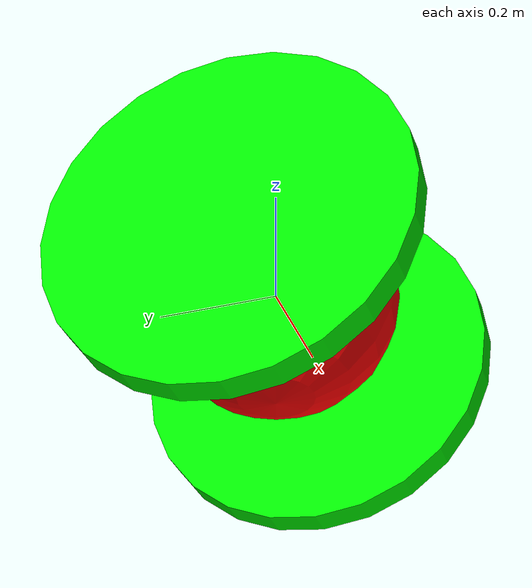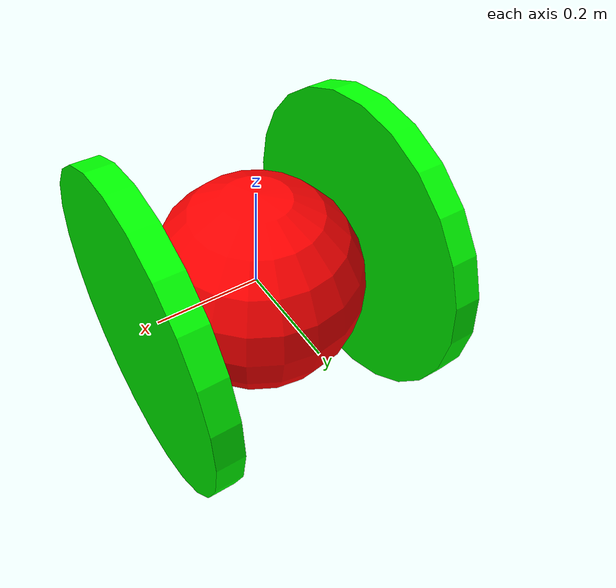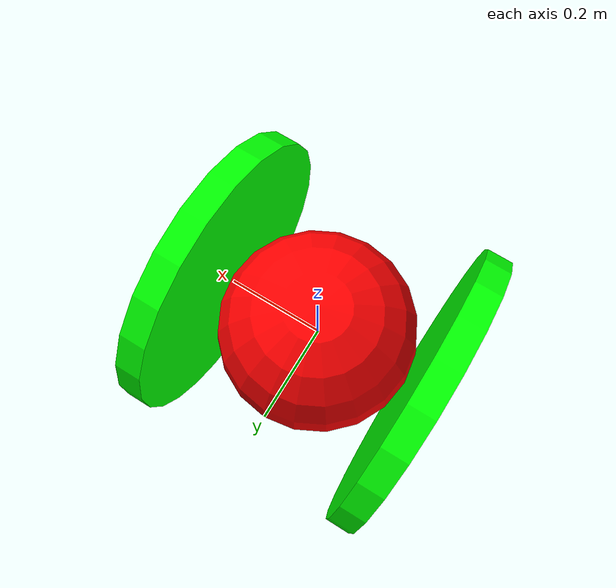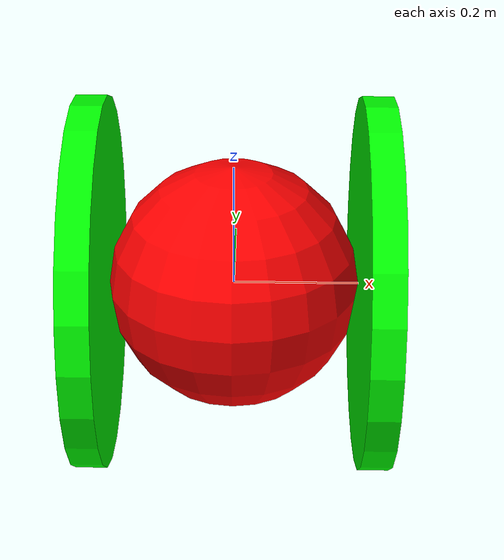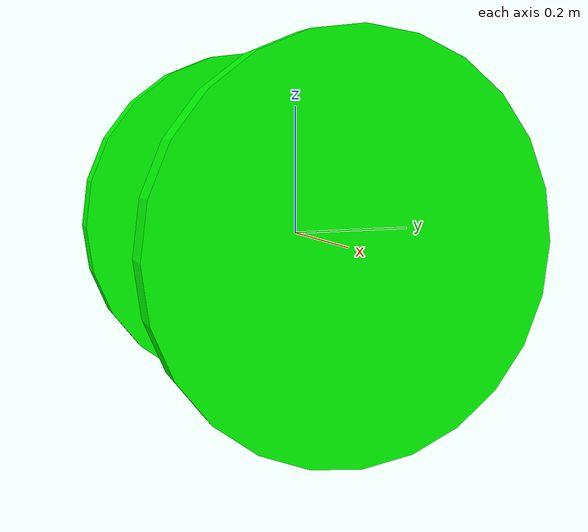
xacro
<?xml version="1.0"?>
<robot xmlns:xacro="http://www.ros.org/wiki/xacro" name="test_bot">

	<xacro:property name = "main_body_radius" value = "0.2"/>
	<xacro:property name = "main_body_length" value = "0.02"/>
	<xacro:property name = "wheel_radius" value = "0.3"/>
	<xacro:property name = "wheel_length" value = "0.05"/>

	<xacro:property name = "pie" value = "3.14159265359"/>
	<xacro:property name = "deg_to_rad" value = "${pie/180.}"/>

	<xacro:macro name = "wheel" params="name radius length">
		<link name = "${name}">
			<visual>
				<geometry>
					<cylinder length = "${length}" radius = "${radius}"/>
				</geometry>
				<origin rpy = "0 ${pie/2} 0"/>
				<material name = "green">
					<color rgba = "0 1 0 1"/>
				</material>
			</visual>
		</link>
	</xacro:macro>

	<link name = "base_link">
		<visual>
			<geometry>
				<sphere radius = "${main_body_radius}"/>
			</geometry>
			<origin rpy = "0 0 0"/>
			<material name = "red">
				<color rgba = "1 0 0 1"/>
			</material>
		</visual>
	</link>

	<xacro:wheel name = "right_wheel" length = "${wheel_length}" radius = "${wheel_radius}"/>
	<xacro:wheel name = "left_wheel" length = "${wheel_length}" radius = "${wheel_radius}"/>

	<joint name="left_joint" type="revolute">
	    <parent link="base_link"/>
	    <child link="left_wheel"/>
	    <origin xyz="${main_body_radius + wheel_length/2} 0 0"/>
	    <axis xyz="1 0 0" />
	    <limit effort="300" velocity="0.1" lower="${-pie}" upper="${pie}"/>
	    <dynamics damping="50" friction="1"/>
	</joint>

	<joint name="right_joint" type="revolute">
	    <parent link="base_link"/>
	    <child link="right_wheel"/>
	    <origin xyz="${-(main_body_radius + wheel_length/2)} 0 0"/>
	    <axis xyz="-1 0 0" />
	    <limit effort="300" velocity="0.1" lower="${-pie}" upper="${pie}"/>
	    <dynamics damping="50" friction="1"/>
	</joint>

</robot>
